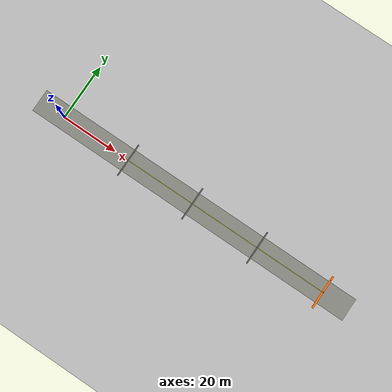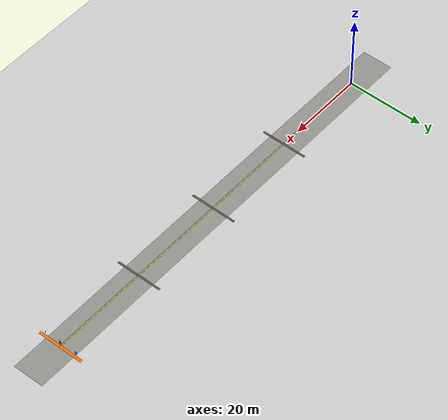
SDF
<?xml version="1.0" ?>
<sdf version="1.5">
  <world name="shooting_stability">

    <physics type="ode">
      <max_step_size>0.0005</max_step_size>
      <real_time_factor>1</real_time_factor>
      <real_time_update_rate>2000</real_time_update_rate>
      <gravity>0 0 -9.81</gravity>
      <ode>
        <solver>
          <type>quick</type>
          <iters>50</iters>
          <sor>1.3</sor>
        </solver>
        <constraints>
          <cfm>0.0</cfm>
          <erp>0.2</erp>
          <contact_max_correcting_vel>10.0</contact_max_correcting_vel>
          <contact_surface_layer>0.001</contact_surface_layer>
        </constraints>
      </ode>
    </physics>

    <scene>
      <ambient>0.45 0.45 0.48 1</ambient>
      <background>0.35 0.50 0.70 1</background>
      <shadows>true</shadows>
      <sky>
        <clouds>
          <speed>6</speed>
        </clouds>
      </sky>
    </scene>

    <gui fullscreen="0">
      <camera name="user_camera">
        <pose>5 -8 4 0 0.35 0.95</pose>
      </camera>
    </gui>

    <include>
      <uri>model://sun</uri>
    </include>

    <include>
      <uri>model://ground_plane</uri>
    </include>

    <model name="range_lane_visual">
      <static>true</static>
      <link name="lane">
        <pose>50 0 0.001 0 0 0</pose>
        <visual name="lane_visual">
          <geometry>
            <box>
              <size>120 8 0.002</size>
            </box>
          </geometry>
          <material>
            <ambient>0.55 0.55 0.52 1</ambient>
            <diffuse>0.58 0.58 0.55 1</diffuse>
          </material>
        </visual>
      </link>
    </model>

    <model name="shooting_range">
      <static>true</static>

      <link name="target_board">
        <pose>100 0 1.4 0 0 0</pose>
        <visual name="target_board_visual">
          <geometry>
            <box>
              <size>0.02 0.5 1.0</size>
            </box>
          </geometry>
          <material>
            <ambient>0.8 0.0 0.0 1</ambient>
            <diffuse>1.0 0.0 0.0 1</diffuse>
          </material>
        </visual>
      </link>

      <!-- Non-facing offset target at +2.5 deg (~4.36 m lateral), robot_lab azimuth envelope. -->
      <link name="target_board_offset">
        <pose>99.9048 4.3619 1.4 0 0 3.1852</pose>
        <visual name="target_board_offset_visual">
          <geometry>
            <box>
              <size>0.02 0.5 1.0</size>
            </box>
          </geometry>
          <material>
            <ambient>0.1 0.4 0.85 1</ambient>
            <diffuse>0.15 0.55 1.0 1</diffuse>
          </material>
        </visual>
      </link>

      <link name="azimuth_left_marker">
        <pose>99.903 4.363 1.4 0 0 0</pose>
        <visual name="azimuth_left_visual">
          <geometry>
            <box>
              <size>0.03 0.10 1.0</size>
            </box>
          </geometry>
          <material>
            <ambient>0.0 0.2 0.8 0.8</ambient>
            <diffuse>0.0 0.25 1.0 0.6</diffuse>
          </material>
        </visual>
      </link>

      <link name="azimuth_right_marker">
        <pose>99.903 -4.363 1.4 0 0 0</pose>
        <visual name="azimuth_right_visual">
          <geometry>
            <box>
              <size>0.03 0.10 1.0</size>
            </box>
          </geometry>
          <material>
            <ambient>0.0 0.2 0.8 0.8</ambient>
            <diffuse>0.0 0.25 1.0 0.6</diffuse>
          </material>
        </visual>
      </link>

      <!-- Static bore-axis reference (MuJoCo attaches a live 100 m ray to Load_sh_Link). -->
      <link name="bullet_trajectory_reference">
        <pose>50.4 0 0.672 0 0 0</pose>
        <visual name="bullet_trajectory_visual">
          <geometry>
            <box>
              <size>100 0.05 0.05</size>
            </box>
          </geometry>
          <material>
            <ambient>0.0 0.8 0.0 0.5</ambient>
            <diffuse>0.0 1.0 0.0 0.35</diffuse>
          </material>
        </visual>
      </link>

      <link name="lane_centerline">
        <pose>50 0 0.006 0 0 0</pose>
        <visual name="lane_centerline_visual">
          <geometry><box><size>100 0.12 0.012</size></box></geometry>
          <material><diffuse>1.0 0.92 0.0 0.9</diffuse></material>
        </visual>
      </link>

      <link name="marker_25m">
        <pose>25 0 0.02 0 0 0</pose>
        <visual name="marker_25m_visual">
          <geometry><box><size>0.5 12 0.04</size></box></geometry>
          <material><diffuse>0.35 0.35 0.35 1</diffuse></material>
        </visual>
      </link>
      <link name="marker_50m">
        <pose>50 0 0.02 0 0 0</pose>
        <visual name="marker_50m_visual">
          <geometry><box><size>0.5 12 0.04</size></box></geometry>
          <material><diffuse>0.35 0.35 0.35 1</diffuse></material>
        </visual>
      </link>
      <link name="marker_75m">
        <pose>75 0 0.02 0 0 0</pose>
        <visual name="marker_75m_visual">
          <geometry><box><size>0.5 12 0.04</size></box></geometry>
          <material><diffuse>0.35 0.35 0.35 1</diffuse></material>
        </visual>
      </link>
      <link name="marker_100m">
        <pose>100 0 0.025 0 0 0</pose>
        <visual name="marker_100m_visual">
          <geometry><box><size>0.7 12 0.05</size></box></geometry>
          <material><diffuse>1.0 0.45 0.0 0.95</diffuse></material>
        </visual>
      </link>
    </model>

  </world>
</sdf>
